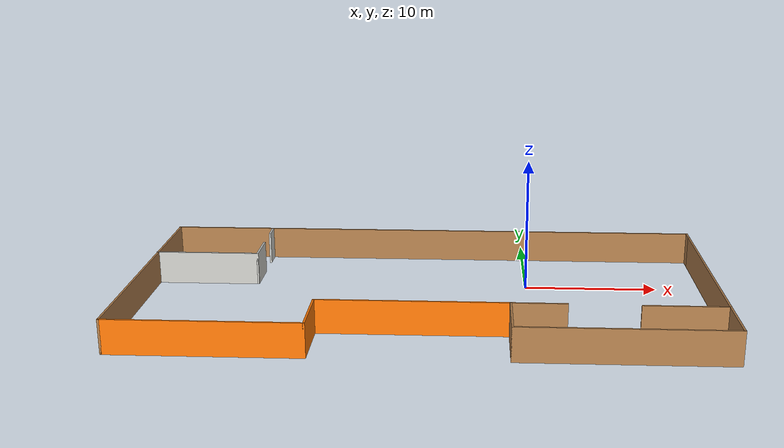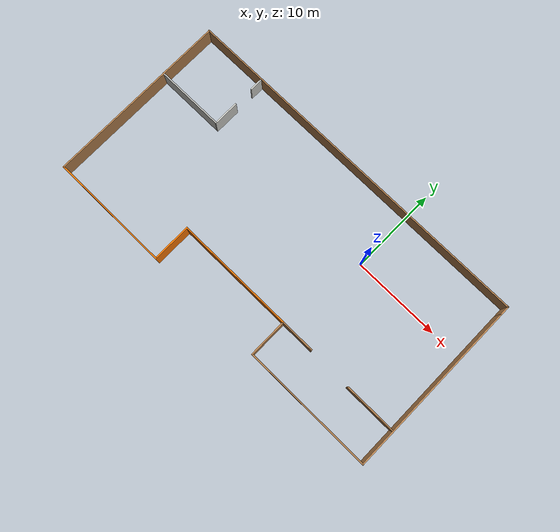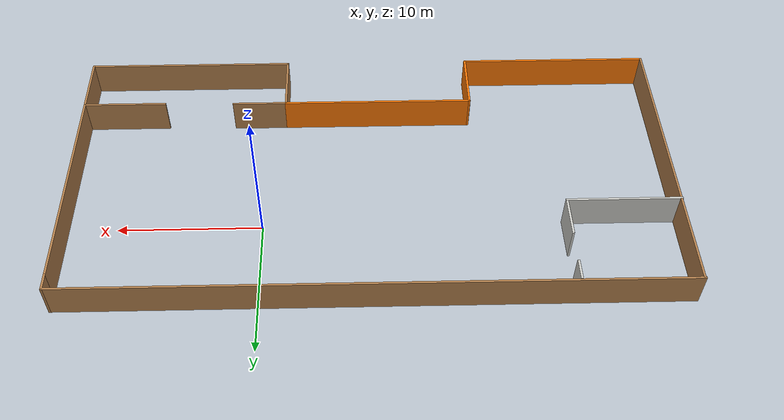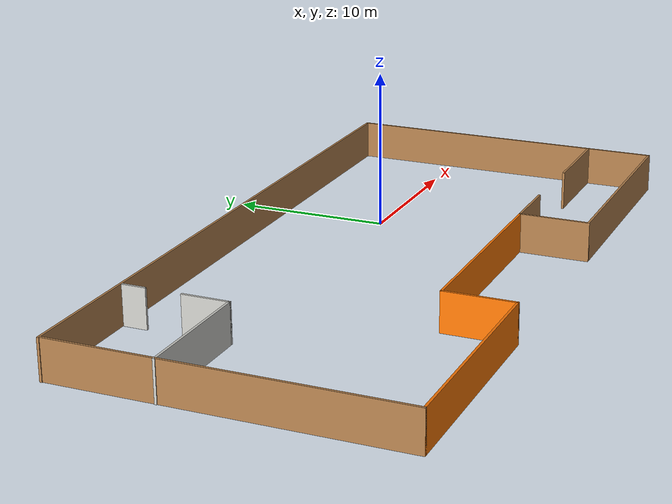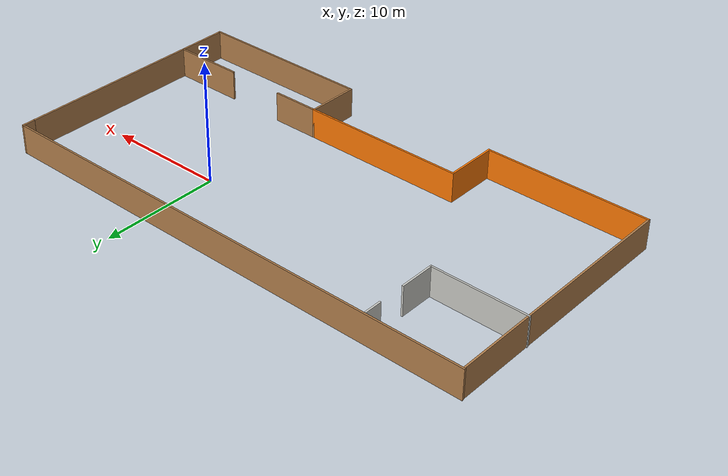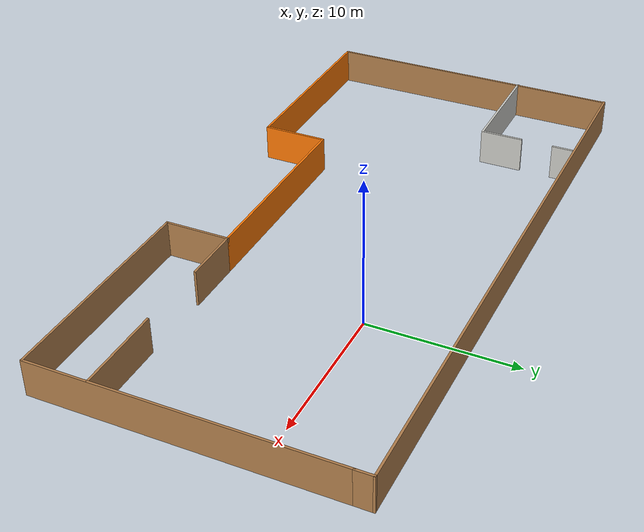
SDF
<?xml version='1.0'?>
<sdf version='1.6'>
  <model name='building'>
    <pose frame=''>-7.62925 -3.80242 0 0 -0 0</pose>
    <link name='Wall_12'>
      <collision name='Wall_12_Collision'>
        <geometry>
          <box>
            <size>21 0.15 2.5</size>
          </box>
        </geometry>
        <pose frame=''>0 0 1.25 0 -0 0</pose>
      </collision>
      <visual name='Wall_12_Visual'>
        <pose frame=''>0 0 1.25 0 -0 0</pose>
        <geometry>
          <box>
            <size>21 0.15 2.5</size>
          </box>
        </geometry>
        <material>
          <script>
            <uri>file://media/materials/scripts/gazebo.material</uri>
            <name>Gazebo/Wood</name>
          </script>
          <ambient>1 1 1 1</ambient>
        </material>
        <meta>
          <layer>0</layer>
        </meta>
      </visual>
      <pose frame=''>-21 -0.05 0 0 0 -1.5708</pose>
    </link>
    <link name='Wall_13'>
      <collision name='Wall_13_Collision'>
        <geometry>
          <box>
            <size>13.75 0.15 2.5</size>
          </box>
        </geometry>
        <pose frame=''>0 0 1.25 0 -0 0</pose>
      </collision>
      <visual name='Wall_13_Visual'>
        <pose frame=''>0 0 1.25 0 -0 0</pose>
        <geometry>
          <box>
            <size>13.75 0.15 2.5</size>
          </box>
        </geometry>
        <material>
          <script>
            <uri>file://media/materials/scripts/gazebo.material</uri>
            <name>Gazebo/Grey</name>
          </script>
          <ambient>0.996078 0.47451 0.0196078 1</ambient>
        </material>
        <meta>
          <layer>0</layer>
        </meta>
      </visual>
      <pose frame=''>-14.2 -10.475 0 0 -0 0</pose>
    </link>
    <link name='Wall_14'>
      <collision name='Wall_14_Collision'>
        <geometry>
          <box>
            <size>4.5 0.15 2.5</size>
          </box>
        </geometry>
        <pose frame=''>0 0 1.25 0 -0 0</pose>
      </collision>
      <visual name='Wall_14_Visual'>
        <pose frame=''>0 0 1.25 0 -0 0</pose>
        <geometry>
          <box>
            <size>4.5 0.15 2.5</size>
          </box>
        </geometry>
        <material>
          <script>
            <uri>file://media/materials/scripts/gazebo.material</uri>
            <name>Gazebo/Grey</name>
          </script>
          <ambient>0.996078 0.47451 0.0196078 1</ambient>
        </material>
        <meta>
          <layer>0</layer>
        </meta>
      </visual>
      <pose frame=''>-7.4 -8.3 0 0 -0 1.5708</pose>
    </link>
    <link name='Wall_15'>
      <collision name='Wall_15_Collision'>
        <geometry>
          <box>
            <size>13.75 0.15 2.5</size>
          </box>
        </geometry>
        <pose frame=''>0 0 1.25 0 -0 0</pose>
      </collision>
      <visual name='Wall_15_Visual'>
        <pose frame=''>0 0 1.25 0 -0 0</pose>
        <geometry>
          <box>
            <size>13.75 0.15 2.5</size>
          </box>
        </geometry>
        <material>
          <script>
            <uri>file://media/materials/scripts/gazebo.material</uri>
            <name>Gazebo/Grey</name>
          </script>
          <ambient>0.996078 0.47451 0.0196078 1</ambient>
        </material>
        <meta>
          <layer>0</layer>
        </meta>
      </visual>
      <pose frame=''>-0.600001 -6.125 0 0 -0 0</pose>
    </link>
    <link name='Wall_16'>
      <collision name='Wall_16_Collision'>
        <geometry>
          <box>
            <size>4.5 0.15 2.5</size>
          </box>
        </geometry>
        <pose frame=''>0 0 1.25 0 -0 0</pose>
      </collision>
      <visual name='Wall_16_Visual'>
        <pose frame=''>0 0 1.25 0 -0 0</pose>
        <geometry>
          <box>
            <size>4.5 0.15 2.5</size>
          </box>
        </geometry>
        <material>
          <script>
            <uri>file://media/materials/scripts/gazebo.material</uri>
            <name>Gazebo/Wood</name>
          </script>
          <ambient>1 1 1 1</ambient>
        </material>
        <meta>
          <layer>0</layer>
        </meta>
      </visual>
      <pose frame=''>6.2 -8.3 0 0 0 -1.5708</pose>
    </link>
    <link name='Wall_17'>
      <collision name='Wall_17_Collision'>
        <geometry>
          <box>
            <size>15 0.15 2.5</size>
          </box>
        </geometry>
        <pose frame=''>0 0 1.25 0 -0 0</pose>
      </collision>
      <visual name='Wall_17_Visual'>
        <pose frame=''>0 0 1.25 0 -0 0</pose>
        <geometry>
          <box>
            <size>15 0.15 2.5</size>
          </box>
        </geometry>
        <material>
          <script>
            <uri>file://media/materials/scripts/gazebo.material</uri>
            <name>Gazebo/Wood</name>
          </script>
          <ambient>1 1 1 1</ambient>
        </material>
        <meta>
          <layer>0</layer>
        </meta>
      </visual>
      <pose frame=''>13.625 -10.475 0 0 -0 0</pose>
    </link>
    <link name='Wall_18'>
      <collision name='Wall_18_Collision'>
        <geometry>
          <box>
            <size>20 0.15 2.5</size>
          </box>
        </geometry>
        <pose frame=''>0 0 1.25 0 -0 0</pose>
      </collision>
      <visual name='Wall_18_Visual'>
        <pose frame=''>0 0 1.25 0 -0 0</pose>
        <geometry>
          <box>
            <size>20 0.15 2.5</size>
          </box>
        </geometry>
        <material>
          <script>
            <uri>file://media/materials/scripts/gazebo.material</uri>
            <name>Gazebo/Wood</name>
          </script>
          <ambient>1 1 1 1</ambient>
        </material>
        <meta>
          <layer>0</layer>
        </meta>
      </visual>
      <pose frame=''>21.05 -0.55 0 0 -0 1.5708</pose>
    </link>
    <link name='Wall_19'>
      <collision name='Wall_19_Collision'>
        <geometry>
          <box>
            <size>1.25 0.15 2.5</size>
          </box>
        </geometry>
        <pose frame=''>0 0 1.25 0 -0 0</pose>
      </collision>
      <visual name='Wall_19_Visual'>
        <pose frame=''>0 0 1.25 0 -0 0</pose>
        <geometry>
          <box>
            <size>1.25 0.15 2.5</size>
          </box>
        </geometry>
        <material>
          <script>
            <uri>file://media/materials/scripts/gazebo.material</uri>
            <name>Gazebo/Wood</name>
          </script>
          <ambient>1 1 1 1</ambient>
        </material>
        <meta>
          <layer>0</layer>
        </meta>
      </visual>
      <pose frame=''>21.05 9.925 0 0 -0 1.5708</pose>
    </link>
    <link name='Wall_20'>
      <collision name='Wall_20_Collision'>
        <geometry>
          <box>
            <size>42.25 0.15 2.5</size>
          </box>
        </geometry>
        <pose frame=''>0 0 1.25 0 -0 0</pose>
      </collision>
      <visual name='Wall_20_Visual'>
        <pose frame=''>0 0 1.25 0 -0 0</pose>
        <geometry>
          <box>
            <size>42.25 0.15 2.5</size>
          </box>
        </geometry>
        <material>
          <script>
            <uri>file://media/materials/scripts/gazebo.material</uri>
            <name>Gazebo/Wood</name>
          </script>
          <ambient>1 1 1 1</ambient>
        </material>
        <meta>
          <layer>0</layer>
        </meta>
      </visual>
      <pose frame=''>0 10.475 0 0 -0 3.14159</pose>
    </link>
    <link name='Wall_23'>
      <collision name='Wall_23_Collision'>
        <geometry>
          <box>
            <size>8 0.15 2.5</size>
          </box>
        </geometry>
        <pose frame=''>0 0 1.25 0 -0 0</pose>
      </collision>
      <visual name='Wall_23_Visual'>
        <pose frame=''>0 0 1.25 0 -0 0</pose>
        <geometry>
          <box>
            <size>8 0.15 2.5</size>
          </box>
        </geometry>
        <material>
          <script>
            <uri>file://media/materials/scripts/gazebo.material</uri>
            <name>Gazebo/CeilingTiled</name>
          </script>
          <ambient>1 1 1 1</ambient>
        </material>
        <meta>
          <layer>0</layer>
        </meta>
      </visual>
      <pose frame=''>-17.1239 3.75403 0 0 -0 0</pose>
    </link>
    <link name='Wall_24'>
      <collision name='Wall_24_Collision'>
        <geometry>
          <box>
            <size>3 0.15 2.5</size>
          </box>
        </geometry>
        <pose frame=''>0 0 1.25 0 -0 0</pose>
      </collision>
      <visual name='Wall_24_Visual'>
        <pose frame=''>0 0 1.25 0 -0 0</pose>
        <geometry>
          <box>
            <size>3 0.15 2.5</size>
          </box>
        </geometry>
        <material>
          <script>
            <uri>file://media/materials/scripts/gazebo.material</uri>
            <name>Gazebo/CeilingTiled</name>
          </script>
          <ambient>1 1 1 1</ambient>
        </material>
        <meta>
          <layer>0</layer>
        </meta>
      </visual>
      <pose frame=''>-13.1989 5.17903 0 0 -0 1.5708</pose>
    </link>
    <link name='Wall_30'>
      <collision name='Wall_30_Collision'>
        <geometry>
          <box>
            <size>1.5 0.15 2.5</size>
          </box>
        </geometry>
        <pose frame=''>0 0 1.25 0 -0 0</pose>
      </collision>
      <visual name='Wall_30_Visual'>
        <pose frame=''>0 0 1.25 0 -0 0</pose>
        <geometry>
          <box>
            <size>1.5 0.15 2.5</size>
          </box>
        </geometry>
        <material>
          <script>
            <uri>file://media/materials/scripts/gazebo.material</uri>
            <name>Gazebo/CeilingTiled</name>
          </script>
          <ambient>1 1 1 1</ambient>
        </material>
        <meta>
          <layer>0</layer>
        </meta>
      </visual>
      <pose frame=''>-13.1829 9.63403 0 0 0 -1.5708</pose>
    </link>
    <link name='Wall_35'>
      <collision name='Wall_35_Collision'>
        <geometry>
          <box>
            <size>6 0.15 2.5</size>
          </box>
        </geometry>
        <pose frame=''>0 0 1.25 0 -0 0</pose>
      </collision>
      <visual name='Wall_35_Visual'>
        <pose frame=''>0 0 1.25 0 -0 0</pose>
        <geometry>
          <box>
            <size>6 0.15 2.5</size>
          </box>
        </geometry>
        <material>
          <script>
            <uri>file://media/materials/scripts/gazebo.material</uri>
            <name>Gazebo/Wood</name>
          </script>
          <ambient>1 1 1 1</ambient>
        </material>
        <meta>
          <layer>0</layer>
        </meta>
      </visual>
      <pose frame=''>18.0771 -6.22483 0 0 -0 3.14159</pose>
    </link>
    <link name='Wall_39'>
      <collision name='Wall_39_Collision'>
        <geometry>
          <box>
            <size>4 0.15 2.5</size>
          </box>
        </geometry>
        <pose frame=''>0 0 1.25 0 -0 0</pose>
      </collision>
      <visual name='Wall_39_Visual'>
        <pose frame=''>0 0 1.25 0 -0 0</pose>
        <geometry>
          <box>
            <size>4 0.15 2.5</size>
          </box>
        </geometry>
        <material>
          <script>
            <uri>file://media/materials/scripts/gazebo.material</uri>
            <name>Gazebo/Wood</name>
          </script>
          <ambient>1 1 1 1</ambient>
        </material>
        <meta>
          <layer>0</layer>
        </meta>
      </visual>
      <pose frame=''>8.125 -6.125 0 0 -0 0</pose>
    </link>
    <static>1</static>
  </model>
</sdf>
